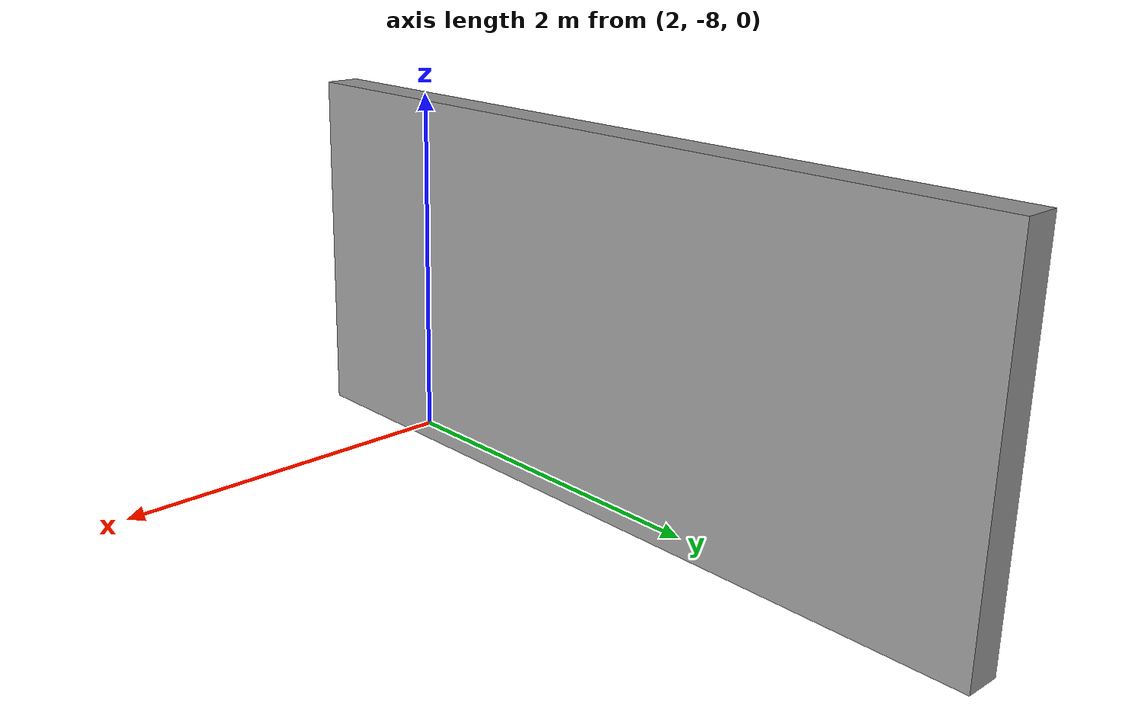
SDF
<?xml version='1.0'?>
<sdf version='1.7'>
  <model name='new_model'>
    <pose>0 0 0 0 -0 0</pose>
    <link name='Door_0'>
      <collision name='Door_0_Collision'>
        <geometry>
          <box>
            <size>4.43 0.2 2</size>
          </box>
        </geometry>
        <pose>0 0 1 0 -0 0</pose>
      </collision>
      <visual name='Door_0_Visual'>
        <pose>0 0 1 0 -0 0</pose>
        <geometry>
          <box>
            <size>4.43 0.2 2</size>
          </box>
        </geometry>
        <material>
          <script>
            <uri>file://media/materials/scripts/gazebo.material</uri>
            <name>Gazebo/Grey</name>
          </script>
        </material>
      </visual>
      <pose>2.05 -6.525 0 0 -0 1.5708</pose>
    </link>
    <static>1</static>
  </model>
</sdf>
